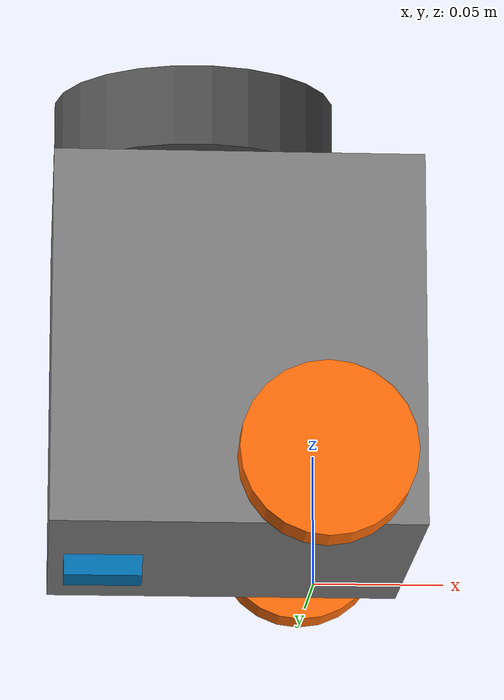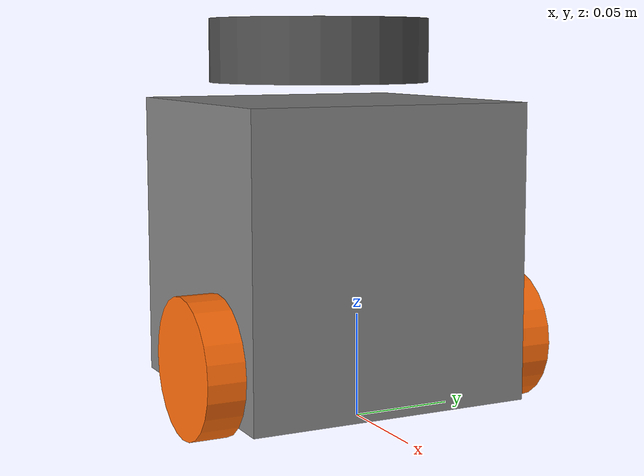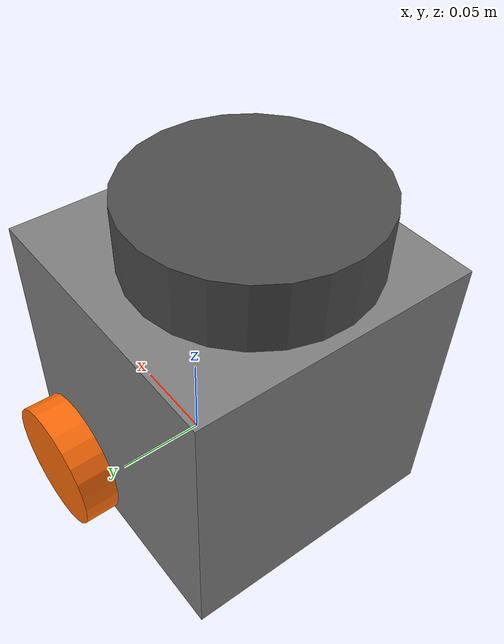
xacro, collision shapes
<?xml version="1.0"?>
<robot xmlns:xacro="http://www.ros.org/wiki/xacro" name="stembot_description">

    <!-- Main robot structure -->
    <xacro:include filename="turtlebot3_burger_core.xacro" />

    <!-- Robot movement control -->
    <xacro:include filename="gazebo_control.xacro" />

    <!-- Sensors -->
    <gazebo>
        <plugin
            filename="gz-sim-sensors-system"
            name="gz::sim::systems::Sensors">
            <render_engine>ogre2</render_engine>
        </plugin>

        <plugin filename="gz-sim-imu-system"
                name="gz::sim::systems::Imu">
        </plugin>
    </gazebo>

    <!-- Lidar sensor -->
    <xacro:include filename="lidar.xacro" />

    <!-- IMU sensor -->
    <xacro:include filename="imu.xacro" />

</robot>

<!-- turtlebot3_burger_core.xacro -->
<robot name="turtlebot3_burger"
  xmlns:xacro="http://ros.org/wiki/xacro">

  <!-- Init colour -->
  <material name="black">
      <color rgba="0.0 0.0 0.0 1.0"/>
  </material>

  <material name="dark">
    <color rgba="0.3 0.3 0.3 1.0"/>
  </material>

  <material name="light_black">
    <color rgba="0.4 0.4 0.4 1.0"/>
  </material>

  <material name="blue">
    <color rgba="0.0 0.0 0.8 1.0"/>
  </material>

  <material name="green">
    <color rgba="0.0 0.8 0.0 1.0"/>
  </material>

  <material name="grey">
    <color rgba="0.5 0.5 0.5 1.0"/>
  </material>

  <material name="orange">
    <color rgba="1.0 0.4235 0.0392 1.0"/>
  </material>

  <material name="brown">
    <color rgba="0.8706 0.8118 0.7647 1.0"/>
  </material>

  <material name="red">
    <color rgba="0.8 0.0 0.0 1.0"/>
  </material>

  <material name="white">
    <color rgba="1.0 1.0 1.0 1.0"/>
  </material>

  <link name="base_footprint"/>

  <joint name="base_joint" type="fixed">
    <parent link="base_footprint"/>
    <child link="base_link"/>
    <origin xyz="0.0 0.0 0.010" rpy="0 0 0"/>
  </joint>

  <link name="base_link">
    <visual>
      <origin xyz="-0.032 0 0.0" rpy="0 0 0"/>
      <geometry>
        <mesh filename="file://$(find tb3_description)/urdf/burger_base.stl" scale="0.001 0.001 0.001"/>
      </geometry>
      <material name="grey"/>
    </visual>

    <collision>
      <origin xyz="-0.032 0 0.070" rpy="0 0 0"/>
      <geometry>
        <box size="0.140 0.140 0.143"/>
      </geometry>
    </collision>

    <inertial>
      <origin xyz="0 0 0" rpy="0 0 0"/>
      <mass value="8.2573504e-01"/>
      <inertia ixx="2.2124416e-03" ixy="-1.2294101e-05" ixz="3.4938785e-05" iyy="2.1193702e-03" iyz="-5.0120904e-06" izz="2.0064271e-03" />
    </inertial>
  </link>

  <joint name="wheel_left_joint" type="continuous">
    <parent link="base_link"/>
    <child link="wheel_left_link"/>
    <origin xyz="0.0 0.08 0.023" rpy="-1.57 0 0"/>
    <axis xyz="0 0 1"/>
  </joint>

  <link name="wheel_left_link">
    <visual>
      <origin xyz="0 0 0" rpy="1.57 0 0"/>
      <geometry>
        <mesh filename="file://$(find tb3_description)/urdf/left_tire.stl" scale="0.001 0.001 0.001"/>
      </geometry>
      <material name="orange"/>
    </visual>

    <collision>
      <origin xyz="0 0 0" rpy="0 0 0"/>
      <geometry>
        <cylinder length="0.018" radius="0.033"/>
      </geometry>
    </collision>

    <inertial>
      <origin xyz="0 0 0" />
      <mass value="2.8498940e-02" />
      <inertia ixx="1.1175580e-05" ixy="-4.2369783e-11" ixz="-5.9381719e-09" iyy="1.1192413e-05" iyz="-1.4400107e-11" izz="2.0712558e-05" />
    </inertial>
  </link>

  <joint name="wheel_right_joint" type="continuous">
    <parent link="base_link"/>
    <child link="wheel_right_link"/>
    <origin xyz="0.0 -0.080 0.023" rpy="-1.57 0 0"/>
    <axis xyz="0 0 1"/>
  </joint>

  <link name="wheel_right_link">
    <visual>
      <origin xyz="0 0 0" rpy="1.57 0 0"/>
      <geometry>
        <mesh filename="file://$(find tb3_description)/urdf/right_tire.stl" scale="0.001 0.001 0.001"/>
      </geometry>
      <material name="orange"/>
    </visual>

    <collision>
      <origin xyz="0 0 0" rpy="0 0 0"/>
      <geometry>
        <cylinder length="0.018" radius="0.033"/>
      </geometry>
    </collision>

    <inertial>
      <origin xyz="0 0 0" />
      <mass value="2.8498940e-02" />
      <inertia ixx="1.1175580e-05" ixy="-4.2369783e-11" ixz="-5.9381719e-09" iyy="1.1192413e-05" iyz="-1.4400107e-11" izz="2.0712558e-05" />
    </inertial>
  </link>

  <joint name="caster_back_joint" type="fixed">
    <parent link="base_link"/>
    <child link="caster_back_link"/>
    <origin xyz="-0.081 0 -0.004" rpy="-1.57 0 0"/>
  </joint>

  <link name="caster_back_link">
    <collision>
      <origin xyz="0 0.001 0" rpy="0 0 0"/>
      <geometry>
        <box size="0.030 0.009 0.020"/>
      </geometry>
    </collision>

    <inertial>
      <origin xyz="0 0 0" />
      <mass value="0.005" />
      <inertia ixx="0.001" ixy="0.0" ixz="0.0" iyy="0.001" iyz="0.0" izz="0.001" />
    </inertial>
  </link>

</robot>

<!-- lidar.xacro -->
<robot xmlns:xacro="http://www.ros.org/wiki/xacro" name="stembot_description">

    <joint name="scan_joint" type="fixed">
    <parent link="base_link"/>
    <child link="lidar_link"/>
    <origin xyz="-0.032 0 0.172" rpy="0 0 2.97"/>
  </joint>

  <link name="lidar_link">
    <visual>
      <origin xyz="0 0 0.0" rpy="0 0 0"/>
      <geometry>
        <mesh filename="file://$(find tb3_description)/urdf/lds.stl" scale="0.001 0.001 0.001"/>
      </geometry>
      <material name="dark"/>
    </visual>

    <collision>
      <origin xyz="0.015 0 -0.0065" rpy="0 0 0"/>
      <geometry>
        <cylinder length="0.0315" radius="0.055"/>
      </geometry>
    </collision>

    <inertial>
      <mass value="0.114" />
      <origin xyz="0 0 0" />
      <inertia ixx="0.001" ixy="0.0" ixz="0.0" iyy="0.001" iyz="0.0" izz="0.001" />
    </inertial>
  </link>

    <!-- Plugin -->

    <gazebo reference="lidar_link">

        <sensor name="lidar" type="gpu_lidar">

            <pose> 0 0 0 0 0 0 </pose>
            <visualize>false</visualize>
            <update_rate>10</update_rate>
            <lidar>
                <scan>
                    <horizontal>
                        <samples>360</samples>
                        <min_angle>-${pi}</min_angle>
                        <max_angle>${pi}</max_angle>
                    </horizontal>
                </scan>
                <range>
                    <min>0.3</min>
                    <max>12</max>
                </range>
            </lidar>
            <topic>scan</topic>
            <gz_frame_id>lidar_link</gz_frame_id>

        </sensor>

    </gazebo>

</robot>

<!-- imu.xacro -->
<robot xmlns:xacro="http://www.ros.org/wiki/xacro" name="stembot_description">

    <!-- Model -->
    <joint name="imu_joint" type="fixed">
    <parent link="base_link"/>
    <child link="imu_link"/>
    <origin xyz="-0.032 0 0.068" rpy="0 0 0"/>
  </joint>

  <link name="imu_link"/>

    <!-- Plugin -->
    <gazebo reference="imu_link">

        <sensor name="imu_sensor" type="imu">
            <always_on>true</always_on>
            <update_rate>30</update_rate>
            <visualize>true</visualize>
            <topic>imu</topic>
            <gz_frame_id>imu_link</gz_frame_id>
        </sensor>

    </gazebo>

</robot>
